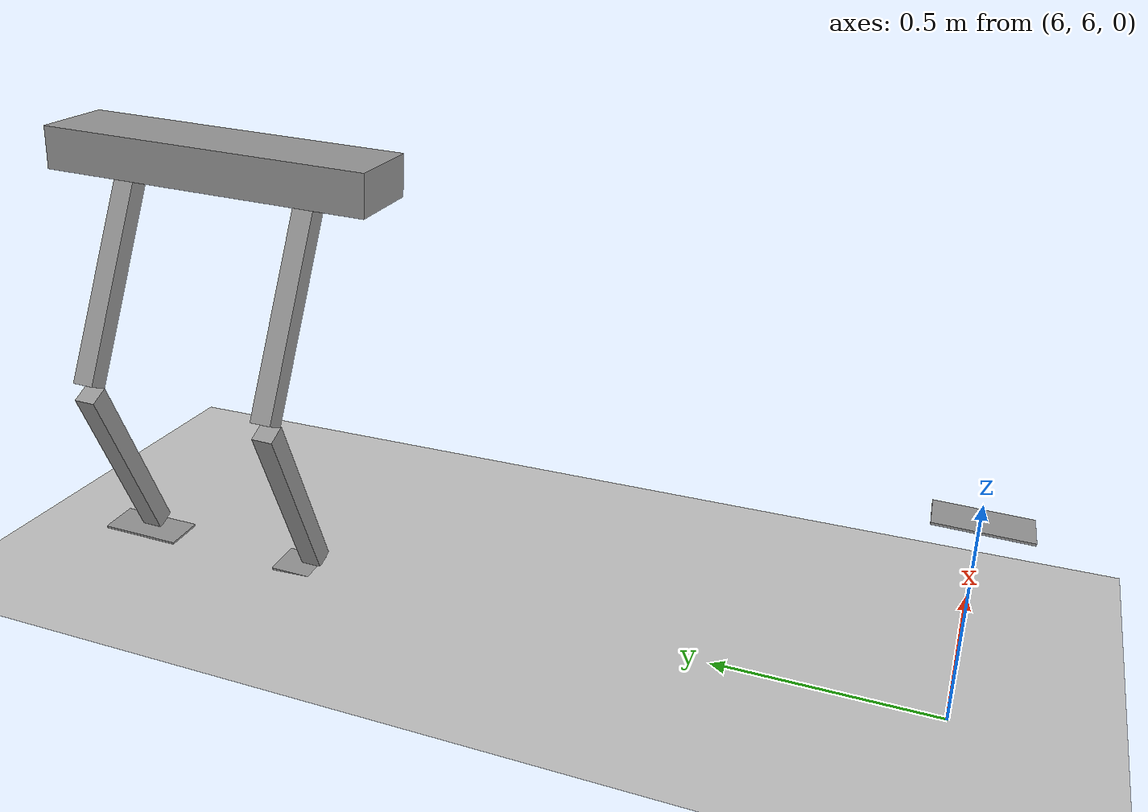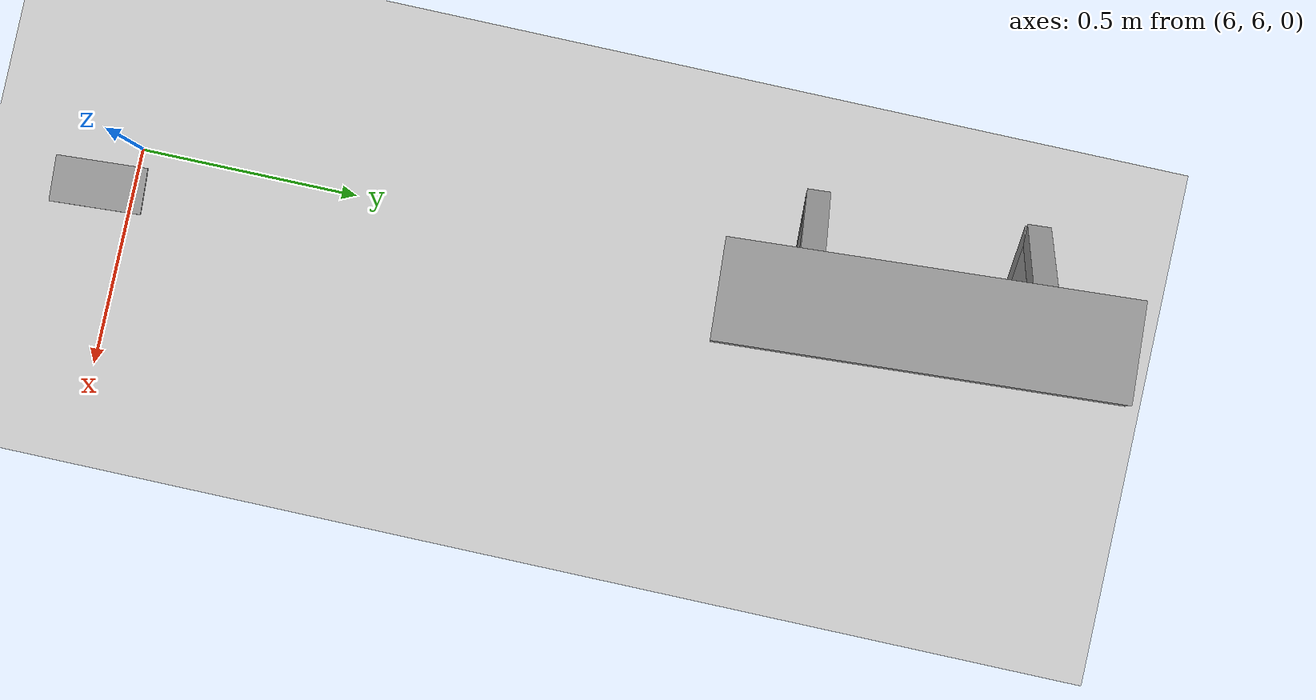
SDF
<sdf version="1.7">
 <world name="default">
  <model name="ground_plane">
   <static>1</static>
   <link name="link">
    <collision name="collision">
     <geometry><plane><normal>0 0 1</normal><size>100 100</size></plane></geometry>
     <surface>
      <contact><collide_bitmask>65535</collide_bitmask></contact>
      <friction><ode><mu>100</mu><mu2>50</mu2></ode></friction>
     </surface>
    </collision>
    <visual name="visual">
     <cast_shadows>0</cast_shadows>
     <geometry><plane><normal>0 0 1</normal><size>100 100</size></plane></geometry>
     <material>
      <script><uri>file://media/materials/scripts/gazebo.material</uri><name>Gazebo/Grey</name></script>
     </material>
    </visual>
   </link>
  </model>
  <model name="HumanoidRobot">
   <link name="link_0">
    <inertial>
     <mass>1</mass>
     <inertia>
      <ixx>0.166667</ixx>
      <ixy>0</ixy>
      <ixz>0</ixz>
      <iyy>0.166667</iyy>
      <iyz>0</iyz>
      <izz>0.166667</izz>
     </inertia>
    </inertial>
    <pose>0.079366 0.216312 0.457777 0 -0 0</pose>
    <visual name="visual">
     <geometry><box><size>0.2 0.8 0.1</size></box></geometry>
     <material>
      <lighting>1</lighting>
      <script><uri>file://media/materials/scripts/gazebo.material</uri><name>Gazebo/Grey</name></script>
      <shader type="pixel"><normal_map>__default__</normal_map></shader>
      <ambient>0.3 0.3 0.3 1</ambient>
      <diffuse>0.7 0.7 0.7 1</diffuse>
      <specular>0.01 0.01 0.01 1</specular>
      <emissive>0 0 0 1</emissive>
     </material>
    </visual>
    <collision name="collision">
     <geometry><box><size>0.2 0.8 0.1</size></box></geometry>
     <surface>
      <friction>
       <ode><mu>1</mu><mu2>1</mu2><fdir1>0 0 0</fdir1><slip1>0</slip1><slip2>0</slip2></ode>
       <torsional>
        <coefficient>1</coefficient>
        <patch_radius>0</patch_radius>
        <surface_radius>0</surface_radius>
        <use_patch_radius>1</use_patch_radius>
        <ode><slip>0</slip></ode>
       </torsional>
      </friction>
      <bounce><restitution_coefficient>0</restitution_coefficient><threshold>1e+06</threshold></bounce>
      <contact>
       <collide_without_contact>0</collide_without_contact>
       <collide_without_contact_bitmask>1</collide_without_contact_bitmask>
       <collide_bitmask>1</collide_bitmask>
       <ode>
        <soft_cfm>0</soft_cfm>
        <soft_erp>0.2</soft_erp>
        <kp>1e+13</kp>
        <kd>1</kd>
        <max_vel>0.01</max_vel>
        <min_depth>0</min_depth>
       </ode>
       <bullet>
        <split_impulse>1</split_impulse>
        <split_impulse_penetration_threshold>-0.01</split_impulse_penetration_threshold>
        <soft_cfm>0</soft_cfm>
        <soft_erp>0.2</soft_erp>
        <kp>1e+13</kp>
        <kd>1</kd>
       </bullet>
      </contact>
     </surface>
    </collision>
   </link>
   <link name="link_1">
    <inertial>
     <mass>1</mass>
     <inertia>
      <ixx>0.166667</ixx>
      <ixy>0</ixy>
      <ixz>0</ixz>
      <iyy>0.166667</iyy>
      <iyz>0</iyz>
      <izz>0.166667</izz>
     </inertia>
    </inertial>
    <pose>0.035258 -0.030805 -0.033667 0 -0 0</pose>
    <visual name="visual">
     <pose>0 0 -0.5 0 -0 0</pose>
     <geometry><box><size>0.1 0.2 0.005</size></box></geometry>
     <material>
      <lighting>1</lighting>
      <script><uri>file://media/materials/scripts/gazebo.material</uri><name>Gazebo/Grey</name></script>
      <shader type="pixel"><normal_map>__default__</normal_map></shader>
      <ambient>0.3 0.3 0.3 1</ambient>
      <diffuse>0.7 0.7 0.7 1</diffuse>
      <specular>0.01 0.01 0.01 1</specular>
      <emissive>0 0 0 1</emissive>
     </material>
    </visual>
    <collision name="collision">
     <pose>0 0 -0.5 0 -0 0</pose>
     <geometry><box><size>0.1 0.2 0.005</size></box></geometry>
     <surface>
      <friction>
       <ode><mu>1</mu><mu2>1</mu2><fdir1>0 0 0</fdir1><slip1>0</slip1><slip2>0</slip2></ode>
       <torsional>
        <coefficient>1</coefficient>
        <patch_radius>0</patch_radius>
        <surface_radius>0</surface_radius>
        <use_patch_radius>1</use_patch_radius>
        <ode><slip>0</slip></ode>
       </torsional>
      </friction>
      <bounce><restitution_coefficient>0</restitution_coefficient><threshold>1e+06</threshold></bounce>
      <contact>
       <collide_without_contact>0</collide_without_contact>
       <collide_without_contact_bitmask>1</collide_without_contact_bitmask>
       <collide_bitmask>1</collide_bitmask>
       <ode>
        <soft_cfm>0</soft_cfm>
        <soft_erp>0.2</soft_erp>
        <kp>1e+13</kp>
        <kd>1</kd>
        <max_vel>0.01</max_vel>
        <min_depth>0</min_depth>
       </ode>
       <bullet>
        <split_impulse>1</split_impulse>
        <split_impulse_penetration_threshold>-0.01</split_impulse_penetration_threshold>
        <soft_cfm>0</soft_cfm>
        <soft_erp>0.2</soft_erp>
        <kp>1e+13</kp>
        <kd>1</kd>
       </bullet>
      </contact>
     </surface>
    </collision>
   </link>
   <link name="link_1_clone">
    <inertial>
     <mass>1</mass>
     <inertia>
      <ixx>0.166667</ixx>
      <ixy>0</ixy>
      <ixz>0</ixz>
      <iyy>0.166667</iyy>
      <iyz>0</iyz>
      <izz>0.166667</izz>
     </inertia>
    </inertial>
    <pose>0.038471 -1.52445 -0.033667 0 -0 0</pose>
    <visual name="visual">
     <geometry><box><size>0.1 0.2 0.005</size></box></geometry>
     <material>
      <lighting>1</lighting>
      <script><uri>file://media/materials/scripts/gazebo.material</uri><name>Gazebo/Grey</name></script>
      <shader type="pixel"><normal_map>__default__</normal_map></shader>
      <ambient>0.3 0.3 0.3 1</ambient>
      <diffuse>0.7 0.7 0.7 1</diffuse>
      <specular>0.01 0.01 0.01 1</specular>
      <emissive>0 0 0 1</emissive>
     </material>
    </visual>
    <collision name="collision">
     <geometry><box><size>0.1 0.2 0.005</size></box></geometry>
     <surface>
      <friction>
       <ode><mu>1</mu><mu2>1</mu2><fdir1>0 0 0</fdir1><slip1>0</slip1><slip2>0</slip2></ode>
       <torsional>
        <coefficient>1</coefficient>
        <patch_radius>0</patch_radius>
        <surface_radius>0</surface_radius>
        <use_patch_radius>1</use_patch_radius>
        <ode><slip>0</slip></ode>
       </torsional>
      </friction>
      <bounce><restitution_coefficient>0</restitution_coefficient><threshold>1e+06</threshold></bounce>
      <contact>
       <collide_without_contact>0</collide_without_contact>
       <collide_without_contact_bitmask>1</collide_without_contact_bitmask>
       <collide_bitmask>1</collide_bitmask>
       <ode>
        <soft_cfm>0</soft_cfm>
        <soft_erp>0.2</soft_erp>
        <kp>1e+13</kp>
        <kd>1</kd>
        <max_vel>0.01</max_vel>
        <min_depth>0</min_depth>
       </ode>
       <bullet>
        <split_impulse>1</split_impulse>
        <split_impulse_penetration_threshold>-0.01</split_impulse_penetration_threshold>
        <soft_cfm>0</soft_cfm>
        <soft_erp>0.2</soft_erp>
        <kp>1e+13</kp>
        <kd>1</kd>
       </bullet>
      </contact>
     </surface>
    </collision>
   </link>
   <link name="link_1_clone_0">
    <inertial>
     <mass>1</mass>
     <inertia>
      <ixx>0.166667</ixx>
      <ixy>0</ixy>
      <ixz>0</ixz>
      <iyy>0.166667</iyy>
      <iyz>0</iyz>
      <izz>0.166667</izz>
     </inertia>
    </inertial>
    <pose>0.035258 0.453517 -0.033667 0 -0 0</pose>
    <visual name="visual">
     <pose>0 0 -0.5 0 -0 0</pose>
     <geometry><box><size>0.1 0.2 0.005</size></box></geometry>
     <material>
      <lighting>1</lighting>
      <script><uri>file://media/materials/scripts/gazebo.material</uri><name>Gazebo/Grey</name></script>
      <shader type="pixel"><normal_map>__default__</normal_map></shader>
      <ambient>0.3 0.3 0.3 1</ambient>
      <diffuse>0.7 0.7 0.7 1</diffuse>
      <specular>0.01 0.01 0.01 1</specular>
      <emissive>0 0 0 1</emissive>
     </material>
    </visual>
    <collision name="collision">
     <pose>0 0 -0.5 0 -0 0</pose>
     <geometry><box><size>0.1 0.2 0.005</size></box></geometry>
     <surface>
      <friction>
       <ode><mu>1</mu><mu2>1</mu2><fdir1>0 0 0</fdir1><slip1>0</slip1><slip2>0</slip2></ode>
       <torsional>
        <coefficient>1</coefficient>
        <patch_radius>0</patch_radius>
        <surface_radius>0</surface_radius>
        <use_patch_radius>1</use_patch_radius>
        <ode><slip>0</slip></ode>
       </torsional>
      </friction>
      <bounce><restitution_coefficient>0</restitution_coefficient><threshold>1e+06</threshold></bounce>
      <contact>
       <collide_without_contact>0</collide_without_contact>
       <collide_without_contact_bitmask>1</collide_without_contact_bitmask>
       <collide_bitmask>1</collide_bitmask>
       <ode>
        <soft_cfm>0</soft_cfm>
        <soft_erp>0.2</soft_erp>
        <kp>1e+13</kp>
        <kd>1</kd>
        <max_vel>0.01</max_vel>
        <min_depth>0</min_depth>
       </ode>
       <bullet>
        <split_impulse>1</split_impulse>
        <split_impulse_penetration_threshold>-0.01</split_impulse_penetration_threshold>
        <soft_cfm>0</soft_cfm>
        <soft_erp>0.2</soft_erp>
        <kp>1e+13</kp>
        <kd>1</kd>
       </bullet>
      </contact>
     </surface>
    </collision>
   </link>
   <link name="link_2">
    <inertial>
     <mass>1</mass>
     <inertia>
      <ixx>0.166667</ixx>
      <ixy>0</ixy>
      <ixz>0</ixz>
      <iyy>0.166667</iyy>
      <iyz>0</iyz>
      <izz>0.166667</izz>
     </inertia>
    </inertial>
    <pose>-0.050369 -0.010805 0.171791 0 -0 0</pose>
    <visual name="visual">
     <pose>0 0 0 0 0.45 0</pose>
     <geometry><box><size>0.05 0.05 0.5</size></box></geometry>
     <material>
      <lighting>1</lighting>
      <script><uri>file://media/materials/scripts/gazebo.material</uri><name>Gazebo/Grey</name></script>
      <shader type="pixel"><normal_map>__default__</normal_map></shader>
      <ambient>0.3 0.3 0.3 1</ambient>
      <diffuse>0.7 0.7 0.7 1</diffuse>
      <specular>0.01 0.01 0.01 1</specular>
      <emissive>0 0 0 1</emissive>
     </material>
    </visual>
    <collision name="collision">
     <pose>0 0 0 0 0.45 0</pose>
     <geometry><box><size>0.05 0.05 0.5</size></box></geometry>
     <surface>
      <friction>
       <ode><mu>1</mu><mu2>1</mu2><fdir1>0 0 0</fdir1><slip1>0</slip1><slip2>0</slip2></ode>
       <torsional>
        <coefficient>1</coefficient>
        <patch_radius>0</patch_radius>
        <surface_radius>0</surface_radius>
        <use_patch_radius>1</use_patch_radius>
        <ode><slip>0</slip></ode>
       </torsional>
      </friction>
      <bounce><restitution_coefficient>0</restitution_coefficient><threshold>1e+06</threshold></bounce>
      <contact>
       <collide_without_contact>0</collide_without_contact>
       <collide_without_contact_bitmask>1</collide_without_contact_bitmask>
       <collide_bitmask>1</collide_bitmask>
       <ode>
        <soft_cfm>0</soft_cfm>
        <soft_erp>0.2</soft_erp>
        <kp>1e+13</kp>
        <kd>1</kd>
        <max_vel>0.01</max_vel>
        <min_depth>0</min_depth>
       </ode>
       <bullet>
        <split_impulse>1</split_impulse>
        <split_impulse_penetration_threshold>-0.01</split_impulse_penetration_threshold>
        <soft_cfm>0</soft_cfm>
        <soft_erp>0.2</soft_erp>
        <kp>1e+13</kp>
        <kd>1</kd>
       </bullet>
      </contact>
     </surface>
    </collision>
   </link>
   <link name="link_2_clone">
    <inertial>
     <mass>1</mass>
     <inertia>
      <ixx>0.166667</ixx>
      <ixy>0</ixy>
      <ixz>0</ixz>
      <iyy>0.166667</iyy>
      <iyz>0</iyz>
      <izz>0.166667</izz>
     </inertia>
    </inertial>
    <pose>-0.045995 0.453517 0.171791 0 -0 0</pose>
    <visual name="visual">
     <pose>0 0 0 0 0.45 0</pose>
     <geometry><box><size>0.05 0.05 0.5</size></box></geometry>
     <material>
      <lighting>1</lighting>
      <script><uri>file://media/materials/scripts/gazebo.material</uri><name>Gazebo/Grey</name></script>
      <shader type="pixel"><normal_map>__default__</normal_map></shader>
      <ambient>0.3 0.3 0.3 1</ambient>
      <diffuse>0.7 0.7 0.7 1</diffuse>
      <specular>0.01 0.01 0.01 1</specular>
      <emissive>0 0 0 1</emissive>
     </material>
    </visual>
    <collision name="collision">
     <pose>0 0 0 0 0.45 0</pose>
     <geometry><box><size>0.05 0.05 0.5</size></box></geometry>
     <surface>
      <friction>
       <ode><mu>1</mu><mu2>1</mu2><fdir1>0 0 0</fdir1><slip1>0</slip1><slip2>0</slip2></ode>
       <torsional>
        <coefficient>1</coefficient>
        <patch_radius>0</patch_radius>
        <surface_radius>0</surface_radius>
        <use_patch_radius>1</use_patch_radius>
        <ode><slip>0</slip></ode>
       </torsional>
      </friction>
      <bounce><restitution_coefficient>0</restitution_coefficient><threshold>1e+06</threshold></bounce>
      <contact>
       <collide_without_contact>0</collide_without_contact>
       <collide_without_contact_bitmask>1</collide_without_contact_bitmask>
       <collide_bitmask>1</collide_bitmask>
       <ode>
        <soft_cfm>0</soft_cfm>
        <soft_erp>0.2</soft_erp>
        <kp>1e+13</kp>
        <kd>1</kd>
        <max_vel>0.01</max_vel>
        <min_depth>0</min_depth>
       </ode>
       <bullet>
        <split_impulse>1</split_impulse>
        <split_impulse_penetration_threshold>-0.01</split_impulse_penetration_threshold>
        <soft_cfm>0</soft_cfm>
        <soft_erp>0.2</soft_erp>
        <kp>1e+13</kp>
        <kd>1</kd>
       </bullet>
      </contact>
     </surface>
    </collision>
   </link>
   <link name="link_2_clone_0">
    <inertial>
     <mass>1</mass>
     <inertia>
      <ixx>0.166667</ixx>
      <ixy>0</ixy>
      <ixz>0</ixz>
      <iyy>0.166667</iyy>
      <iyz>0</iyz>
      <izz>0.166667</izz>
     </inertia>
    </inertial>
    <pose>-0.045995 -0.010805 -0.350181 0 -0 0</pose>
    <visual name="visual">
     <pose>0 0 0.05 0 -0.45 0</pose>
     <geometry><box><size>0.05 0.05 0.5</size></box></geometry>
     <material>
      <lighting>1</lighting>
      <script><uri>file://media/materials/scripts/gazebo.material</uri><name>Gazebo/Grey</name></script>
      <shader type="pixel"><normal_map>__default__</normal_map></shader>
      <ambient>0.3 0.3 0.3 1</ambient>
      <diffuse>0.7 0.7 0.7 1</diffuse>
      <specular>0.01 0.01 0.01 1</specular>
      <emissive>0 0 0 1</emissive>
     </material>
    </visual>
    <collision name="collision">
     <pose>0 0 0.05 0 -0.45 0</pose>
     <geometry><box><size>0.05 0.05 0.5</size></box></geometry>
     <surface>
      <friction>
       <ode><mu>1</mu><mu2>1</mu2><fdir1>0 0 0</fdir1><slip1>0</slip1><slip2>0</slip2></ode>
       <torsional>
        <coefficient>1</coefficient>
        <patch_radius>0</patch_radius>
        <surface_radius>0</surface_radius>
        <use_patch_radius>1</use_patch_radius>
        <ode><slip>0</slip></ode>
       </torsional>
      </friction>
      <bounce><restitution_coefficient>0</restitution_coefficient><threshold>1e+06</threshold></bounce>
      <contact>
       <collide_without_contact>0</collide_without_contact>
       <collide_without_contact_bitmask>1</collide_without_contact_bitmask>
       <collide_bitmask>1</collide_bitmask>
       <ode>
        <soft_cfm>0</soft_cfm>
        <soft_erp>0.2</soft_erp>
        <kp>1e+13</kp>
        <kd>1</kd>
        <max_vel>0.01</max_vel>
        <min_depth>0</min_depth>
       </ode>
       <bullet>
        <split_impulse>1</split_impulse>
        <split_impulse_penetration_threshold>-0.01</split_impulse_penetration_threshold>
        <soft_cfm>0</soft_cfm>
        <soft_erp>0.2</soft_erp>
        <kp>1e+13</kp>
        <kd>1</kd>
       </bullet>
      </contact>
     </surface>
    </collision>
   </link>
   <link name="link_2_clone_0_clone">
    <inertial>
     <mass>1</mass>
     <inertia>
      <ixx>0.166667</ixx>
      <ixy>0</ixy>
      <ixz>0</ixz>
      <iyy>0.166667</iyy>
      <iyz>0</iyz>
      <izz>0.166667</izz>
     </inertia>
    </inertial>
    <pose>-0.045995 0.453517 -0.350181 0 -0 0</pose>
    <visual name="visual">
     <pose>0 0 0.05 0 -0.45 0</pose>
     <geometry><box><size>0.05 0.05 0.5</size></box></geometry>
     <material>
      <lighting>1</lighting>
      <script><uri>file://media/materials/scripts/gazebo.material</uri><name>Gazebo/Grey</name></script>
      <shader type="pixel"><normal_map>__default__</normal_map></shader>
      <ambient>0.3 0.3 0.3 1</ambient>
      <diffuse>0.7 0.7 0.7 1</diffuse>
      <specular>0.01 0.01 0.01 1</specular>
      <emissive>0 0 0 1</emissive>
     </material>
    </visual>
    <collision name="collision">
     <pose>0 0 0.05 0 -0.45 0</pose>
     <geometry><box><size>0.05 0.05 0.5</size></box></geometry>
     <surface>
      <friction>
       <ode><mu>1</mu><mu2>1</mu2><fdir1>0 0 0</fdir1><slip1>0</slip1><slip2>0</slip2></ode>
       <torsional>
        <coefficient>1</coefficient>
        <patch_radius>0</patch_radius>
        <surface_radius>0</surface_radius>
        <use_patch_radius>1</use_patch_radius>
        <ode><slip>0</slip></ode>
       </torsional>
      </friction>
      <bounce><restitution_coefficient>0</restitution_coefficient><threshold>1e+06</threshold></bounce>
      <contact>
       <collide_without_contact>0</collide_without_contact>
       <collide_without_contact_bitmask>1</collide_without_contact_bitmask>
       <collide_bitmask>1</collide_bitmask>
       <ode>
        <soft_cfm>0</soft_cfm>
        <soft_erp>0.2</soft_erp>
        <kp>1e+13</kp>
        <kd>1</kd>
        <max_vel>0.01</max_vel>
        <min_depth>0</min_depth>
       </ode>
       <bullet>
        <split_impulse>1</split_impulse>
        <split_impulse_penetration_threshold>-0.01</split_impulse_penetration_threshold>
        <soft_cfm>0</soft_cfm>
        <soft_erp>0.2</soft_erp>
        <kp>1e+13</kp>
        <kd>1</kd>
       </bullet>
      </contact>
     </surface>
    </collision>
   </link>
   <joint name="link_1_JOINT_13" type="screw">
    <parent>link_1</parent>
    <child>link_2_clone_0</child>
    <axis>
     <xyz>1 0 0</xyz>
     <limit>
      <lower>-1.79769e+308</lower>
      <upper>1.79769e+308</upper>
      <effort>-1</effort>
      <velocity>-1</velocity>
     </limit>
     <dynamics>
      <spring_reference>0</spring_reference>
      <spring_stiffness>0</spring_stiffness>
      <damping>0</damping>
     </dynamics>
    </axis>
    <physics>
     <ode><limit><cfm>0</cfm><erp>0.2</erp></limit><suspension><cfm>0</cfm><erp>0.2</erp></suspension></ode>
    </physics>
    <thread_pitch>1</thread_pitch>
   </joint>
   <joint name="link_1_JOINT_1" type="revolute">
    <parent>link_1</parent>
    <child>link_2_clone_0</child>
    <axis>
     <xyz>1 0 0</xyz>
     <limit>
      <lower>-1.79769e+308</lower>
      <upper>1.79769e+308</upper>
      <effort>-1</effort>
      <velocity>-1</velocity>
     </limit>
     <dynamics>
      <spring_reference>0</spring_reference>
      <spring_stiffness>0</spring_stiffness>
      <damping>0</damping>
     </dynamics>
    </axis>
    <physics>
     <ode><limit><cfm>0</cfm><erp>0.2</erp></limit><suspension><cfm>0</cfm><erp>0.2</erp></suspension></ode>
    </physics>
   </joint>
   <joint name="link_1_clone_0_JOINT_10" type="screw">
    <parent>link_1_clone_0</parent>
    <child>link_2_clone_0_clone</child>
    <axis>
     <xyz>1 0 0</xyz>
     <limit>
      <lower>-1.79769e+308</lower>
      <upper>1.79769e+308</upper>
      <effort>-1</effort>
      <velocity>-1</velocity>
     </limit>
     <dynamics>
      <spring_reference>0</spring_reference>
      <spring_stiffness>0</spring_stiffness>
      <damping>0</damping>
     </dynamics>
    </axis>
    <physics>
     <ode><limit><cfm>0</cfm><erp>0.2</erp></limit><suspension><cfm>0</cfm><erp>0.2</erp></suspension></ode>
    </physics>
    <thread_pitch>1</thread_pitch>
   </joint>
   <joint name="link_1_clone_0_JOINT_3" type="revolute">
    <parent>link_1_clone_0</parent>
    <child>link_2_clone_0_clone</child>
    <axis>
     <xyz>1 0 0</xyz>
     <limit>
      <lower>-1.79769e+308</lower>
      <upper>1.79769e+308</upper>
      <effort>-1</effort>
      <velocity>-1</velocity>
     </limit>
     <dynamics>
      <spring_reference>0</spring_reference>
      <spring_stiffness>0</spring_stiffness>
      <damping>0</damping>
     </dynamics>
    </axis>
    <physics>
     <ode><limit><cfm>0</cfm><erp>0.2</erp></limit><suspension><cfm>0</cfm><erp>0.2</erp></suspension></ode>
    </physics>
   </joint>
   <joint name="link_1_clone_0_JOINT_8" type="fixed">
    <parent>link_1_clone_0</parent>
    <child>link_2_clone_0_clone</child>
    <physics>
     <ode><limit><cfm>0</cfm><erp>0.2</erp></limit><suspension><cfm>0</cfm><erp>0.2</erp></suspension></ode>
    </physics>
   </joint>
   <joint name="link_2_JOINT_0" type="revolute">
    <parent>link_2</parent>
    <child>link_2_clone_0</child>
    <axis>
     <xyz>1 0 0</xyz>
     <limit>
      <lower>-1.79769e+308</lower>
      <upper>1.79769e+308</upper>
      <effort>-1</effort>
      <velocity>-1</velocity>
     </limit>
     <dynamics>
      <spring_reference>0</spring_reference>
      <spring_stiffness>0</spring_stiffness>
      <damping>0</damping>
     </dynamics>
    </axis>
    <physics>
     <ode><limit><cfm>0</cfm><erp>0.2</erp></limit><suspension><cfm>0</cfm><erp>0.2</erp></suspension></ode>
    </physics>
   </joint>
   <joint name="link_2_JOINT_14" type="revolute">
    <parent>link_2</parent>
    <child>link_2_clone_0</child>
    <axis>
     <xyz>1 0 0</xyz>
     <limit>
      <lower>-1.79769e+308</lower>
      <upper>1.79769e+308</upper>
      <effort>-1</effort>
      <velocity>-1</velocity>
     </limit>
     <dynamics>
      <spring_reference>0</spring_reference>
      <spring_stiffness>0</spring_stiffness>
      <damping>0</damping>
     </dynamics>
    </axis>
    <physics>
     <ode><limit><cfm>0</cfm><erp>0.2</erp></limit><suspension><cfm>0</cfm><erp>0.2</erp></suspension></ode>
    </physics>
   </joint>
   <joint name="link_2_JOINT_18" type="screw">
    <parent>link_2</parent>
    <child>link_0</child>
    <axis>
     <xyz>1 0 0</xyz>
     <limit>
      <lower>-1.79769e+308</lower>
      <upper>1.79769e+308</upper>
      <effort>-1</effort>
      <velocity>-1</velocity>
     </limit>
     <dynamics>
      <spring_reference>0</spring_reference>
      <spring_stiffness>0</spring_stiffness>
      <damping>0</damping>
     </dynamics>
    </axis>
    <physics>
     <ode><limit><cfm>0</cfm><erp>0.2</erp></limit><suspension><cfm>0</cfm><erp>0.2</erp></suspension></ode>
    </physics>
    <thread_pitch>1</thread_pitch>
   </joint>
   <joint name="link_2_clone_0_clone_JOINT_11" type="revolute">
    <parent>link_2_clone_0_clone</parent>
    <child>link_2_clone</child>
    <axis>
     <xyz>1 0 0</xyz>
     <limit>
      <lower>-1.79769e+308</lower>
      <upper>1.79769e+308</upper>
      <effort>-1</effort>
      <velocity>-1</velocity>
     </limit>
     <dynamics>
      <spring_reference>0</spring_reference>
      <spring_stiffness>0</spring_stiffness>
      <damping>0</damping>
     </dynamics>
    </axis>
    <physics>
     <ode><limit><cfm>0</cfm><erp>0.2</erp></limit><suspension><cfm>0</cfm><erp>0.2</erp></suspension></ode>
    </physics>
   </joint>
   <joint name="link_2_clone_0_clone_JOINT_4" type="revolute">
    <parent>link_2_clone_0_clone</parent>
    <child>link_2_clone</child>
    <axis>
     <xyz>1 0 0</xyz>
     <limit>
      <lower>-1.79769e+308</lower>
      <upper>1.79769e+308</upper>
      <effort>-1</effort>
      <velocity>-1</velocity>
     </limit>
     <dynamics>
      <spring_reference>0</spring_reference>
      <spring_stiffness>0</spring_stiffness>
      <damping>0</damping>
     </dynamics>
    </axis>
    <physics>
     <ode><limit><cfm>0</cfm><erp>0.2</erp></limit><suspension><cfm>0</cfm><erp>0.2</erp></suspension></ode>
    </physics>
   </joint>
   <joint name="link_2_clone_0_clone_JOINT_5" type="revolute">
    <parent>link_2_clone_0_clone</parent>
    <child>link_2_clone</child>
    <axis>
     <xyz>1 0 0</xyz>
     <limit>
      <lower>-1.79769e+308</lower>
      <upper>1.79769e+308</upper>
      <effort>-1</effort>
      <velocity>-1</velocity>
     </limit>
     <dynamics>
      <spring_reference>0</spring_reference>
      <spring_stiffness>0</spring_stiffness>
      <damping>0</damping>
     </dynamics>
    </axis>
    <physics>
     <ode><limit><cfm>0</cfm><erp>0.2</erp></limit><suspension><cfm>0</cfm><erp>0.2</erp></suspension></ode>
    </physics>
   </joint>
   <joint name="link_2_clone_0_clone_JOINT_6" type="revolute">
    <parent>link_2_clone_0_clone</parent>
    <child>link_2_clone</child>
    <axis>
     <xyz>1 0 0</xyz>
     <limit>
      <lower>-1.79769e+308</lower>
      <upper>1.79769e+308</upper>
      <effort>-1</effort>
      <velocity>-1</velocity>
     </limit>
     <dynamics>
      <spring_reference>0</spring_reference>
      <spring_stiffness>0</spring_stiffness>
      <damping>0</damping>
     </dynamics>
    </axis>
    <physics>
     <ode><limit><cfm>0</cfm><erp>0.2</erp></limit><suspension><cfm>0</cfm><erp>0.2</erp></suspension></ode>
    </physics>
   </joint>
   <joint name="link_2_clone_0_clone_JOINT_9" type="screw">
    <parent>link_2_clone_0_clone</parent>
    <child>link_2_clone</child>
    <axis>
     <xyz>1 0 0</xyz>
     <limit>
      <lower>-1.79769e+308</lower>
      <upper>1.79769e+308</upper>
      <effort>-1</effort>
      <velocity>-1</velocity>
     </limit>
     <dynamics>
      <spring_reference>0</spring_reference>
      <spring_stiffness>0</spring_stiffness>
      <damping>0</damping>
     </dynamics>
    </axis>
    <physics>
     <ode><limit><cfm>0</cfm><erp>0.2</erp></limit><suspension><cfm>0</cfm><erp>0.2</erp></suspension></ode>
    </physics>
    <thread_pitch>1</thread_pitch>
   </joint>
   <joint name="link_2_clone_JOINT_15" type="screw">
    <parent>link_2_clone</parent>
    <child>link_0</child>
    <axis>
     <xyz>1 0 0</xyz>
     <limit>
      <lower>-1.79769e+308</lower>
      <upper>1.79769e+308</upper>
      <effort>-1</effort>
      <velocity>-1</velocity>
     </limit>
     <dynamics>
      <spring_reference>0</spring_reference>
      <spring_stiffness>0</spring_stiffness>
      <damping>0</damping>
     </dynamics>
    </axis>
    <physics>
     <ode><limit><cfm>0</cfm><erp>0.2</erp></limit><suspension><cfm>0</cfm><erp>0.2</erp></suspension></ode>
    </physics>
    <thread_pitch>1</thread_pitch>
   </joint>
   <joint name="link_2_clone_JOINT_17" type="screw">
    <parent>link_2_clone</parent>
    <child>link_0</child>
    <axis>
     <xyz>1 0 0</xyz>
     <limit>
      <lower>-1.79769e+308</lower>
      <upper>1.79769e+308</upper>
      <effort>-1</effort>
      <velocity>-1</velocity>
     </limit>
     <dynamics>
      <spring_reference>0</spring_reference>
      <spring_stiffness>0</spring_stiffness>
      <damping>0</damping>
     </dynamics>
    </axis>
    <physics>
     <ode><limit><cfm>0</cfm><erp>0.2</erp></limit><suspension><cfm>0</cfm><erp>0.2</erp></suspension></ode>
    </physics>
    <thread_pitch>1</thread_pitch>
   </joint>
   <static>0</static>
   <pose>5.9866 7.50928 0.529525 0.059236 -6e-06 0.060003</pose>
  </model>
 </world>
</sdf>
